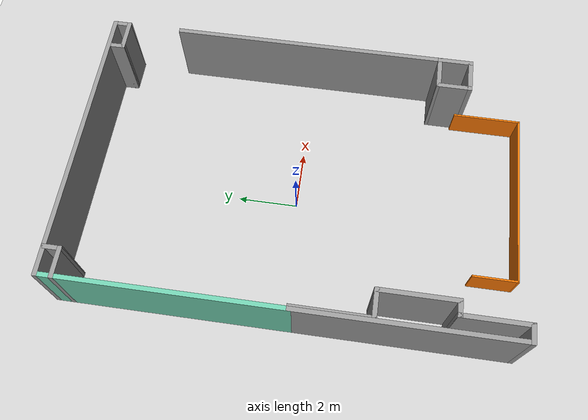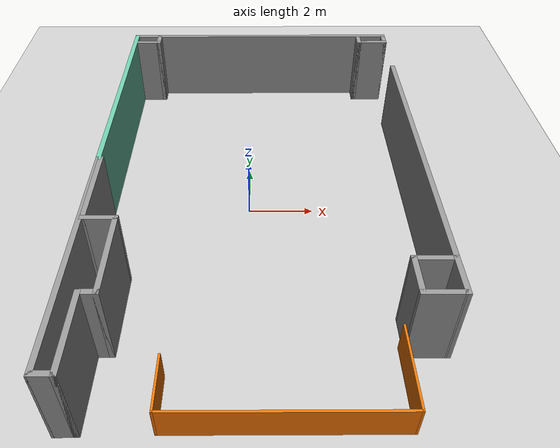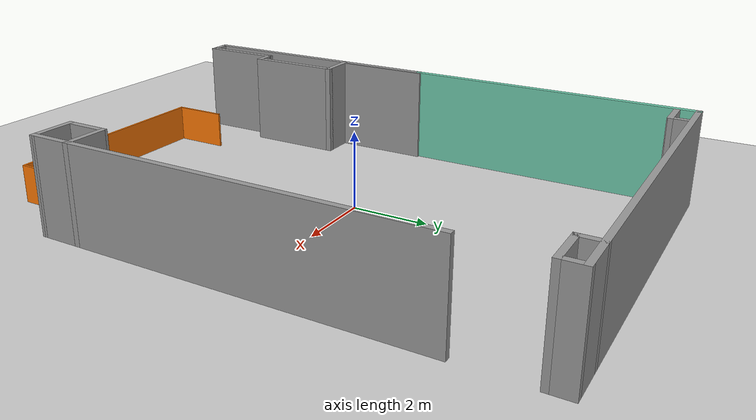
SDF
<sdf version="1.6">
 <world name="default">
  <light name="sun" type="directional">
   <pose>0 0 10 0 -0 0</pose>
   <diffuse>0.8 0.8 0.8 1</diffuse>
   <specular>0.1 0.1 0.1 1</specular>
   <attenuation>
    <range>1000</range>
    <constant>0.9</constant>
    <linear>0.01</linear>
    <quadratic>0.001</quadratic>
   </attenuation>
   <direction>-0.5 0.5 -1</direction>
  </light>
  <model name="ground_plane">
   <static>1</static>
   <link name="link">
    <collision name="collision">
     <geometry><plane><normal>0 0 1</normal><size>100 100</size></plane></geometry>
     <surface><friction><ode><mu>100</mu><mu2>50</mu2></ode></friction></surface>
    </collision>
    <visual name="visual">
     <cast_shadows>0</cast_shadows>
     <geometry><plane><normal>0 0 1</normal><size>100 100</size></plane></geometry>
     <material>
      <script><uri>file://media/materials/scripts/gazebo.material</uri><name>Gazebo/Grey</name></script>
     </material>
    </visual>
   </link>
  </model>
  <gravity>0 0 -9.8</gravity>
  <magnetic_field>6e-06 2.3e-05 -4.2e-05</magnetic_field>
  <atmosphere type="adiabatic"/>
  <physics name="default_physics" default="0" type="ode">
   <max_step_size>0.001</max_step_size>
   <real_time_factor>1</real_time_factor>
   <real_time_update_rate>1000</real_time_update_rate>
  </physics>
  <scene><ambient>0.4 0.4 0.4 1</ambient><background>0.7 0.7 0.7 1</background><shadows>1</shadows></scene>
  <spherical_coordinates>
   <surface_model>EARTH_WGS84</surface_model>
   <latitude_deg>0</latitude_deg>
   <longitude_deg>0</longitude_deg>
   <elevation>0</elevation>
   <heading_deg>0</heading_deg>
  </spherical_coordinates>
  <model name="B2_field">
   <pose>0.363838 -0.107396 0 0 -0 0</pose>
   <link name="Wall_10">
    <collision name="Wall_10_Collision">
     <geometry><box><size>0.65 0.15 2.5</size></box></geometry>
     <pose>0 0 1.25 0 -0 0</pose>
    </collision>
    <visual name="Wall_10_Visual">
     <pose>0 0 1.25 0 -0 0</pose>
     <geometry><box><size>0.65 0.15 2.5</size></box></geometry>
     <material>
      <script><uri>file://media/materials/scripts/gazebo.material</uri><name>Gazebo/Grey</name></script>
      <ambient>1 1 1 1</ambient>
     </material>
    </visual>
    <pose>-4.44057 -7.29 0 0 -0 0</pose>
   </link>
   <link name="Wall_12">
    <collision name="Wall_12_Collision">
     <geometry><box><size>2.24 0.15 2.5</size></box></geometry>
     <pose>0 0 1.25 0 -0 0</pose>
    </collision>
    <visual name="Wall_12_Visual">
     <pose>0 0 1.25 0 -0 0</pose>
     <geometry><box><size>2.24 0.15 2.5</size></box></geometry>
     <material>
      <script><uri>file://media/materials/scripts/gazebo.material</uri><name>Gazebo/Grey</name></script>
      <ambient>1 1 1 1</ambient>
     </material>
    </visual>
    <pose>-4.19057 -6.245 0 0 -0 1.5708</pose>
   </link>
   <link name="Wall_14">
    <collision name="Wall_14_Collision">
     <geometry><box><size>0.58 0.15 2.5</size></box></geometry>
     <pose>0 0 1.25 0 -0 0</pose>
    </collision>
    <visual name="Wall_14_Visual">
     <pose>0 0 1.25 0 -0 0</pose>
     <geometry><box><size>0.58 0.15 2.5</size></box></geometry>
     <material>
      <script><uri>file://media/materials/scripts/gazebo.material</uri><name>Gazebo/Grey</name></script>
      <ambient>1 1 1 1</ambient>
     </material>
    </visual>
    <pose>-3.97557 -5.2 0 0 -0 0</pose>
   </link>
   <link name="Wall_16">
    <collision name="Wall_16_Collision">
     <geometry><box><size>2.59 0.15 2.5</size></box></geometry>
     <pose>0 0 1.25 0 -0 0</pose>
    </collision>
    <visual name="Wall_16_Visual">
     <pose>0 0 1.25 0 -0 0</pose>
     <geometry><box><size>2.59 0.15 2.5</size></box></geometry>
     <material>
      <script><uri>file://media/materials/scripts/gazebo.material</uri><name>Gazebo/Grey</name></script>
      <ambient>1 1 1 1</ambient>
     </material>
    </visual>
    <pose>-3.76057 -3.98 0 0 -0 1.5708</pose>
   </link>
   <link name="Wall_18">
    <collision name="Wall_18_Collision">
     <geometry><box><size>1.01 0.15 2.5</size></box></geometry>
     <pose>0 0 1.25 0 -0 0</pose>
    </collision>
    <visual name="Wall_18_Visual">
     <pose>0 0 1.25 0 -0 0</pose>
     <geometry><box><size>1.01 0.15 2.5</size></box></geometry>
     <material>
      <script><uri>file://media/materials/scripts/gazebo.material</uri><name>Gazebo/Grey</name></script>
      <ambient>1 1 1 1</ambient>
     </material>
    </visual>
    <pose>-4.19057 -2.76 0 0 -0 3.14159</pose>
   </link>
   <link name="Wall_20">
    <collision name="Wall_20_Collision">
     <geometry><box><size>2.62 0.15 2.5</size></box></geometry>
     <pose>0 0 1.25 0 -0 0</pose>
    </collision>
    <visual name="Wall_20_Visual">
     <pose>0 0 1.25 0 -0 0</pose>
     <geometry><box><size>2.62 0.15 2.5</size></box></geometry>
     <material>
      <script><uri>file://media/materials/scripts/gazebo.material</uri><name>Gazebo/Grey</name></script>
      <ambient>1 1 1 1</ambient>
     </material>
    </visual>
    <pose>-4.62057 -1.525 0 0 -0 1.5708</pose>
   </link>
   <link name="Wall_26">
    <collision name="Wall_26_Collision">
     <geometry><box><size>1.02 0.15 2.5</size></box></geometry>
     <pose>0 0 1.25 0 -0 0</pose>
    </collision>
    <visual name="Wall_26_Visual">
     <pose>0 0 1.25 0 -0 0</pose>
     <geometry><box><size>1.02 0.15 2.5</size></box></geometry>
     <material>
      <script><uri>file://media/materials/scripts/gazebo.material</uri><name>Gazebo/Grey</name></script>
      <ambient>1 1 1 1</ambient>
     </material>
    </visual>
    <pose>-4.25557 6.79 0 0 -0 0</pose>
   </link>
   <link name="Wall_28">
    <collision name="Wall_28_Collision">
     <geometry><box><size>0.65 0.15 2.5</size></box></geometry>
     <pose>0 0 1.25 0 -0 0</pose>
    </collision>
    <visual name="Wall_28_Visual">
     <pose>0 0 1.25 0 -0 0</pose>
     <geometry><box><size>0.65 0.15 2.5</size></box></geometry>
     <material>
      <script><uri>file://media/materials/scripts/gazebo.material</uri><name>Gazebo/Grey</name></script>
      <ambient>1 1 1 1</ambient>
     </material>
    </visual>
    <pose>-3.82057 7.04 0 0 -0 1.5708</pose>
   </link>
   <link name="Wall_30">
    <collision name="Wall_30_Collision">
     <geometry><box><size>0.65 0.15 2.5</size></box></geometry>
     <pose>0 0 1.25 0 -0 0</pose>
    </collision>
    <visual name="Wall_30_Visual">
     <pose>0 0 1.25 0 -0 0</pose>
     <geometry><box><size>0.65 0.15 2.5</size></box></geometry>
     <material>
      <script><uri>file://media/materials/scripts/gazebo.material</uri><name>Gazebo/Grey</name></script>
      <ambient>1 1 1 1</ambient>
     </material>
    </visual>
    <pose>3.73943 7.04 0 0 0 -1.5708</pose>
   </link>
   <link name="Wall_31">
    <collision name="Wall_31_Collision">
     <geometry><box><size>1.1 0.15 2.5</size></box></geometry>
     <pose>0 0 1.25 0 -0 0</pose>
    </collision>
    <visual name="Wall_31_Visual">
     <pose>0 0 1.25 0 -0 0</pose>
     <geometry><box><size>1.1 0.15 2.5</size></box></geometry>
     <material>
      <script><uri>file://media/materials/scripts/gazebo.material</uri><name>Gazebo/Grey</name></script>
      <ambient>1 1 1 1</ambient>
     </material>
    </visual>
    <pose>4.21443 6.79 0 0 -0 0</pose>
   </link>
   <link name="Wall_33">
    <collision name="Wall_33_Collision">
     <geometry><box><size>0.65 0.15 2.5</size></box></geometry>
     <pose>0 0 1.25 0 -0 0</pose>
    </collision>
    <visual name="Wall_33_Visual">
     <pose>0 0 1.25 0 -0 0</pose>
     <geometry><box><size>0.65 0.15 2.5</size></box></geometry>
     <material>
      <script><uri>file://media/materials/scripts/gazebo.material</uri><name>Gazebo/Grey</name></script>
      <ambient>1 1 1 1</ambient>
     </material>
    </visual>
    <pose>4.68943 7.04 0 0 0 -1.5708</pose>
   </link>
   <link name="Wall_35">
    <collision name="Wall_35_Collision">
     <geometry><box><size>1.5 0.06 1</size></box></geometry>
     <pose>0 0 0.5 0 -0 0</pose>
    </collision>
    <visual name="Wall_35_Visual">
     <pose>0 0 0.5 0 -0 0</pose>
     <geometry><box><size>1.5 0.06 1</size></box></geometry>
     <material>
      <script><uri>file://media/materials/scripts/gazebo.material</uri><name>Gazebo/Grey</name></script>
      <ambient>0.996078 0.47451 0.0196078 1</ambient>
     </material>
    </visual>
    <pose>-2.41057 -6.57 0 0 0 -1.5708</pose>
   </link>
   <link name="Wall_36">
    <collision name="Wall_36_Collision">
     <geometry><box><size>5.98 0.06 1</size></box></geometry>
     <pose>0 0 0.5 0 -0 0</pose>
    </collision>
    <visual name="Wall_36_Visual">
     <pose>0 0 0.5 0 -0 0</pose>
     <geometry><box><size>5.98 0.06 1</size></box></geometry>
     <material>
      <script><uri>file://media/materials/scripts/gazebo.material</uri><name>Gazebo/Grey</name></script>
      <ambient>0.996078 0.47451 0.0196078 1</ambient>
     </material>
    </visual>
    <pose>0.549426 -7.29 0 0 -0 0</pose>
   </link>
   <link name="Wall_37">
    <collision name="Wall_37_Collision">
     <geometry><box><size>2.3 0.06 1</size></box></geometry>
     <pose>0 0 0.5 0 -0 0</pose>
    </collision>
    <visual name="Wall_37_Visual">
     <pose>0 0 0.5 0 -0 0</pose>
     <geometry><box><size>2.3 0.06 1</size></box></geometry>
     <material>
      <script><uri>file://media/materials/scripts/gazebo.material</uri><name>Gazebo/Grey</name></script>
      <ambient>0.996078 0.47451 0.0196078 1</ambient>
     </material>
    </visual>
    <pose>3.50943 -6.17 0 0 -0 1.5708</pose>
   </link>
   <link name="Wall_39">
    <collision name="Wall_39_Collision">
     <geometry><box><size>1.19893 0.15 2.5</size></box></geometry>
     <pose>0 0 1.25 0 -0 0</pose>
    </collision>
    <visual name="Wall_39_Visual">
     <pose>0 0 1.25 0 -0 0</pose>
     <geometry><box><size>1.19893 0.15 2.5</size></box></geometry>
     <material>
      <script><uri>file://media/materials/scripts/gazebo.material</uri><name>Gazebo/Grey</name></script>
      <ambient>1 1 1 1</ambient>
     </material>
    </visual>
    <pose>3.65996 -4.71553 0 0 -0 1.56978</pose>
   </link>
   <link name="Wall_4">
    <collision name="Wall_4_Collision">
     <geometry><box><size>7.15 0.15 2.5</size></box></geometry>
     <pose>0 0 1.25 0 -0 0</pose>
    </collision>
    <visual name="Wall_4_Visual">
     <pose>0 0 1.25 0 -0 0</pose>
     <geometry><box><size>7.15 0.15 2.5</size></box></geometry>
     <material>
      <script><uri>file://media/materials/scripts/gazebo.material</uri><name>Gazebo/Grey</name></script>
      <ambient>1 1 1 1</ambient>
     </material>
    </visual>
    <pose>-4.69057 -3.79 0 0 -0 1.5708</pose>
   </link>
   <link name="Wall_41">
    <collision name="Wall_41_Collision">
     <geometry><box><size>1.18 0.15 2.5</size></box></geometry>
     <pose>0 0 1.25 0 -0 0</pose>
    </collision>
    <visual name="Wall_41_Visual">
     <pose>0 0 1.25 0 -0 0</pose>
     <geometry><box><size>1.18 0.15 2.5</size></box></geometry>
     <material>
      <script><uri>file://media/materials/scripts/gazebo.material</uri><name>Gazebo/Grey</name></script>
      <ambient>1 1 1 1</ambient>
     </material>
    </visual>
    <pose>4.17546 -4.19103 0 0 -0 6.7e-05</pose>
   </link>
   <link name="Wall_43">
    <collision name="Wall_43_Collision">
     <geometry><box><size>1.2 0.15 2.5</size></box></geometry>
     <pose>0 0 1.25 0 -0 0</pose>
    </collision>
    <visual name="Wall_43_Visual">
     <pose>0 0 1.25 0 -0 0</pose>
     <geometry><box><size>1.2 0.15 2.5</size></box></geometry>
     <material>
      <script><uri>file://media/materials/scripts/gazebo.material</uri><name>Gazebo/Grey</name></script>
      <ambient>1 1 1 1</ambient>
     </material>
    </visual>
    <pose>4.69046 -4.71603 0 0 0 -1.57073</pose>
   </link>
   <link name="Wall_45">
    <collision name="Wall_45_Collision">
     <geometry><box><size>1.18107 0.15 2.5</size></box></geometry>
     <pose>0 0 1.25 0 -0 0</pose>
    </collision>
    <visual name="Wall_45_Visual">
     <pose>0 0 1.25 0 -0 0</pose>
     <geometry><box><size>1.18107 0.15 2.5</size></box></geometry>
     <material>
      <script><uri>file://media/materials/scripts/gazebo.material</uri><name>Gazebo/Grey</name></script>
      <ambient>1 1 1 1</ambient>
     </material>
    </visual>
    <pose>4.17496 -5.24053 0 0 -0 3.14056</pose>
   </link>
   <link name="Wall_47">
    <collision name="Wall_47_Collision">
     <geometry><box><size>9.25 0.15 2.5</size></box></geometry>
     <pose>0 0 1.25 0 -0 0</pose>
    </collision>
    <visual name="Wall_47_Visual">
     <pose>0 0 1.25 0 -0 0</pose>
     <geometry><box><size>9.25 0.15 2.5</size></box></geometry>
     <material>
      <script><uri>file://media/materials/scripts/gazebo.material</uri><name>Gazebo/Grey</name></script>
      <ambient>1 1 1 1</ambient>
     </material>
    </visual>
    <pose>4.69043 0.359 0 0 -0 1.5708</pose>
   </link>
   <link name="Wall_49">
    <collision name="Wall_49_Collision">
     <geometry><box><size>9.53 0.15 2.5</size></box></geometry>
     <pose>0 0 1.25 0 -0 0</pose>
    </collision>
    <visual name="Wall_49_Visual">
     <pose>0 0 1.25 0 -0 0</pose>
     <geometry><box><size>9.53 0.15 2.5</size></box></geometry>
     <material>
      <script><uri>file://media/materials/scripts/gazebo.material</uri><name>Gazebo/Grey</name></script>
      <ambient>1 1 1 1</ambient>
     </material>
    </visual>
    <pose>-0.000573 7.29 0 0 -0 3.14159</pose>
   </link>
   <link name="Wall_51">
    <collision name="Wall_51_Collision">
     <geometry><box><size>7.73 0.15 2.5</size></box></geometry>
     <pose>0 0 1.25 0 -0 0</pose>
    </collision>
    <visual name="Wall_51_Visual">
     <pose>0 0 1.25 0 -0 0</pose>
     <geometry><box><size>7.73 0.15 2.5</size></box></geometry>
     <material>
      <script><uri>file://media/materials/scripts/gazebo.material</uri><name>Gazebo/Grey</name></script>
      <ambient>0.435294 0.796078 0.67451 1</ambient>
     </material>
    </visual>
    <pose>-4.69057 3.5 0 0 0 -1.5708</pose>
   </link>
   <static>1</static>
  </model>
 </world>
</sdf>
